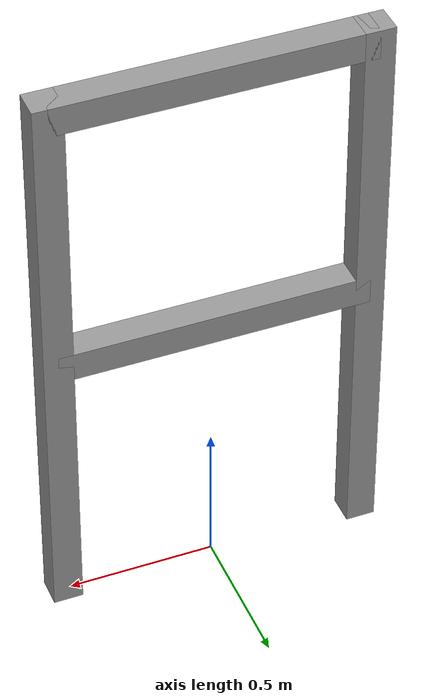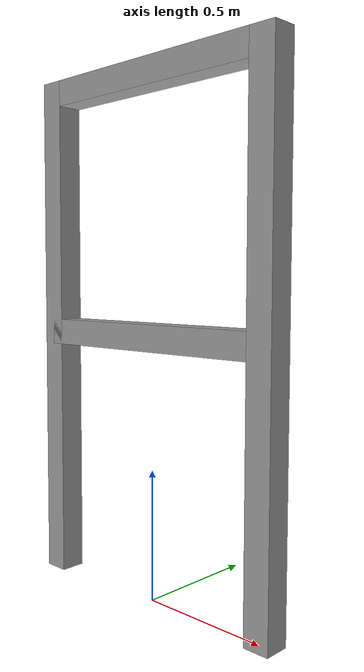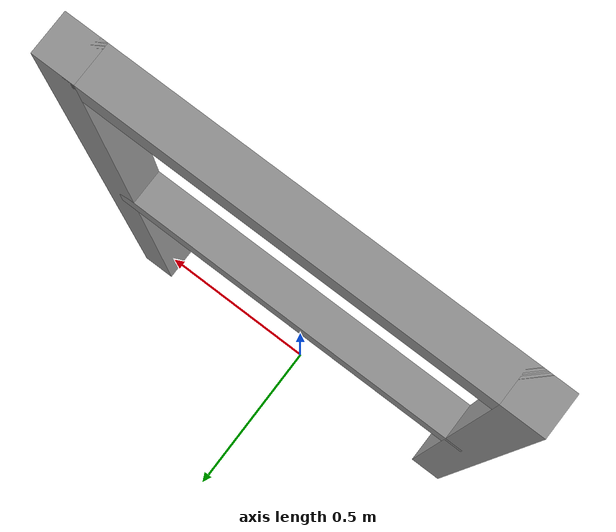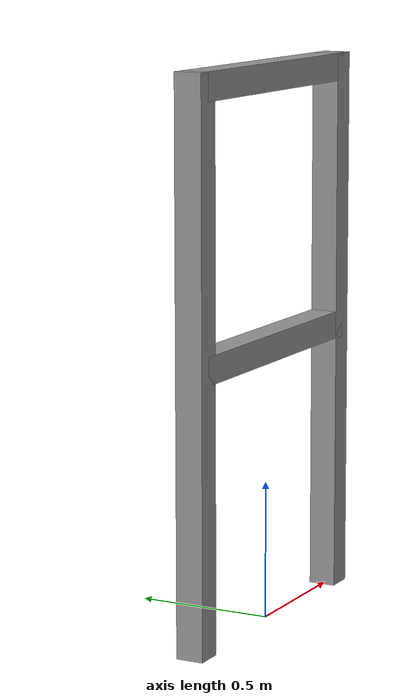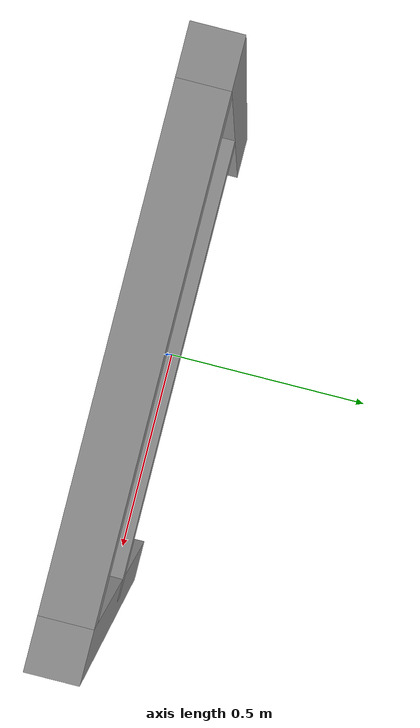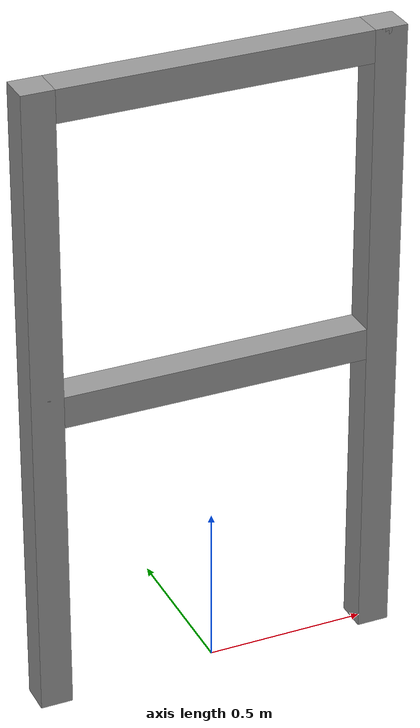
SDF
<?xml version='1.0'?>
<sdf version='1.6'>
    <model name='gate'>
        <static>1</static>
        <pose>0 0 0 0 0 0</pose>
        <link name='link'>

            <!-- ========== Left Leg ========== -->
            <visual name='leg_left_visual'>
            <pose>-0.525 0 1.0 0 0 0</pose>
            <geometry>
                <box>
                <size>0.1 0.1 2.0</size>
                </box>
            </geometry>
            <material>
                <script>
                <name>Gazebo/Grey</name>
                <uri>file://media/materials/scripts/gazebo.material</uri>
                </script>
            </material>
            </visual>
            <collision name='leg_left_collision'>
            <pose>-0.525 0 1.0 0 0 0</pose>
            <geometry>
                <box>
                <size>0.1 0.1 2.0</size>
                </box>
            </geometry>
            </collision>

            <!-- ========== Right Leg ========== -->
            <visual name='leg_right_visual'>
            <pose>0.525 0 1.0 0 0 0</pose>
            <geometry>
                <box>
                <size>0.1 0.1 2.0</size>
                </box>
            </geometry>
            <material>
                <script>
                <name>Gazebo/Grey</name>
                <uri>file://media/materials/scripts/gazebo.material</uri>
                </script>
            </material>
            </visual>
            <collision name='leg_right_collision'>
            <pose>0.525 0 1.0 0 0 0</pose>
            <geometry>
                <box>
                <size>0.1 0.1 2.0</size>
                </box>
            </geometry>
            </collision>

            <!-- ========== Top Beam ========== -->
            <visual name='top_beam_visual'>
            <pose>0 0 1.95 0 0 0</pose>
            <geometry>
                <box>
                <size>1.05 0.1 0.1</size> <!-- spans from x=-0.525 to x=+0.525 -->
                </box>
            </geometry>
            <material>
                <script>
                <name>Gazebo/Grey</name>
                <uri>file://media/materials/scripts/gazebo.material</uri>
                </script>
            </material>
            </visual>
            <collision name='top_beam_collision'>
            <pose>0 0 1.95 0 0 0</pose>
            <geometry>
                <box>
                <size>1.05 0.1 0.1</size>
                </box>
            </geometry>
            </collision>

            <!-- ========== Middle Beam ========== -->
            <visual name='middle_beam_visual'>
            <pose>0 0 1.0 0 0 0</pose>
            <geometry>
                <box>
                <size>1.05 0.1 0.1</size>
                </box>
            </geometry>
            <material>
                <script>
                <name>Gazebo/Grey</name>
                <uri>file://media/materials/scripts/gazebo.material</uri>
                </script>
            </material>
            </visual>
            <collision name='middle_beam_collision'>
            <pose>0 0 1.0 0 0 0</pose>
            <geometry>
                <box>
                <size>1.05 0.1 0.1</size>
                </box>
            </geometry>
            </collision>

            <!-- Inertial (optional for static models, but included for completeness) -->
            <inertial>
            <mass>20.0</mass>
            <inertia>
                <ixx>2.0</ixx>
                <ixy>0</ixy>
                <ixz>0</ixz>
                <iyy>2.0</iyy>
                <iyz>0</iyz>
                <izz>2.0</izz>
            </inertia>
            </inertial>

            <self_collide>0</self_collide>
            <enable_wind>0</enable_wind>
            <kinematic>0</kinematic>
        </link>
    </model>
</sdf>
